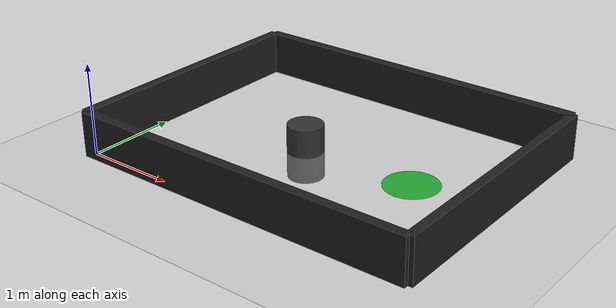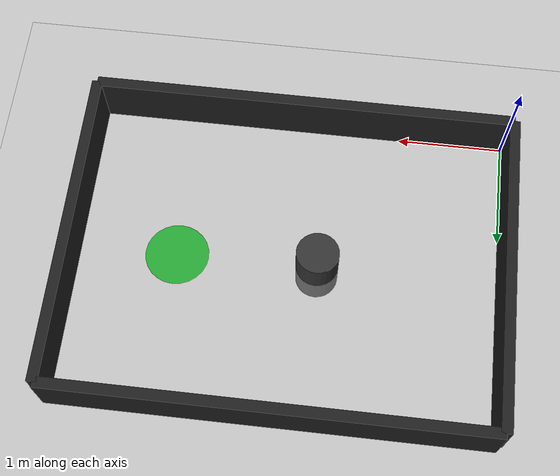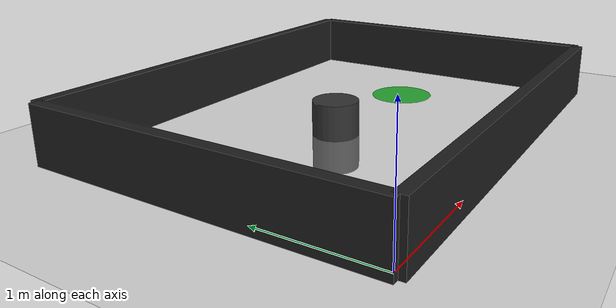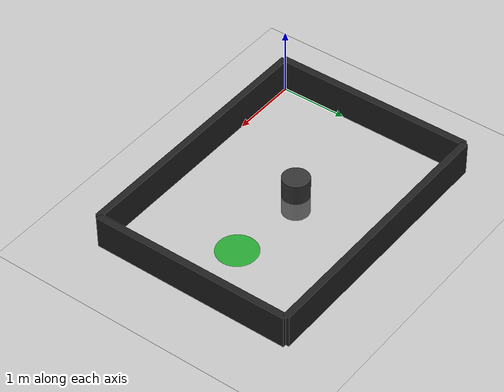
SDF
<?xml version="1.0" ?>
<sdf version="1.6">
  <world name="default">
    <include>
      <uri>model://ground_plane</uri>
    </include>
    <include>
      <uri>model://sun</uri>
    </include>

    <physics type="ode">
      <real_time_update_rate>1000.0</real_time_update_rate>
      <max_step_size>0.001</max_step_size>
      <real_time_factor>1</real_time_factor>
      <ode>
        <solver>
          <type>quick</type>
          <iters>150</iters>
          <precon_iters>0</precon_iters>
          <sor>1.400000</sor>
          <use_dynamic_moi_rescaling>1</use_dynamic_moi_rescaling>
        </solver>
        <constraints>
          <cfm>0.00001</cfm>
          <erp>0.2</erp>
          <contact_max_correcting_vel>2000.000000</contact_max_correcting_vel>
          <contact_surface_layer>0.01000</contact_surface_layer>
        </constraints>
      </ode>
    </physics>

    <!-- Include the marker for the goal position -->
    <include>
      <uri>model://marker</uri>
      <pose>2.99 1.45 0 0 0 0</pose>
    </include>

    <!-- Include pushable cylinder object -->
    <include>
      <uri>model://cylinder-2</uri>
      <pose>1.67 1.42 0 0 0 0</pose>
    </include>

    <!-- Include the wall that creates the world limit -->
    <include>
      <uri>model://wall</uri>
      <pose>0.45 1.45 -0.75 0 0 0</pose>
    </include>

    <scene>
      <ambient>0.4 0.4 0.4 1</ambient>
      <background>0.7 0.7 0.7 1</background>
      <shadows>true</shadows>
    </scene>

    <gui fullscreen='0'>
      <camera name='user_camera'>
        <pose>0.0 0.0 17.0 0 1.5708 0</pose>
        <view_controller>orbit</view_controller>
      </camera>
    </gui>
  </world>
</sdf>

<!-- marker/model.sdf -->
<sdf version="1.4">
  <model name="marker">
    <pose frame=''>0 0 0 0 -0 0</pose>
    <static>1</static>
    <gravity>1</gravity>
    <self_collide>0</self_collide>
    <kinematic>0</kinematic>

    <link name="marker_link">
      <collision name="body_collision">
        <geometry>
            <cylinder>
                <radius>.3</radius>
                <length>.0001</length>
            </cylinder>
        </geometry>
        <pose frame=''>0 0 0 0 -0 0</pose>
      </collision>

      <visual name="body_visual">
        <pose frame=''>0 0 0 0 -0 0</pose>
        <geometry>
            <cylinder>
                <radius>.3</radius>
                <length>.0001</length>
            </cylinder>
        </geometry>

        <material>
          <script>
            <uri>file://media/materials/scripts/gazebo.material</uri>
            <name>Gazebo/Green</name>
          </script>
          <ambient>1 1 1 1</ambient>
        </material>
      </visual>

    </link>
  </model>
</sdf>

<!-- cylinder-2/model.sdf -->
<sdf version="1.4">
  <model name="cylinder-2">
    <pose frame=''>0 0 0 0 -0 0</pose>
    <static>0</static>
    <gravity>1</gravity>
    <self_collide>0</self_collide>
    <kinematic>0</kinematic>

    <link name="cylinder_link">
      <collision name="body_collision">
        <geometry>
            <cylinder>
                <radius>.2</radius>
                <length>.6</length>
            </cylinder>
        </geometry>
        <pose frame=''>0 0 0 0 -0 0</pose>
      </collision>

      <visual name="body_visual">
        <pose frame=''>0 0 0 0 -0 0</pose>
        <geometry>
            <cylinder>
                <radius>.2</radius>
                <length>.6</length>
            </cylinder>
        </geometry>
        <material>
          <ambient>1.0 0.8 0.8 1</ambient>
          <diffuse>0.2 0.2 0.2 1</diffuse>
          <specular>0 0 0 0</specular>
          <emissive>0 0 0 1</emissive>
        </material>
      </visual>

      <inertial>
        <mass>0.04</mass>
        <inertia>
          <ixx>0.0016</ixx>
          <ixy>0</ixy>
          <ixz>0</ixz>
          <iyy>0.0016</iyy>
          <iyz>0</iyz>
          <izz>0.0008</izz>
        </inertia>
      </inertial>
    </link>
  </model>
</sdf>

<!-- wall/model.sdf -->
<sdf version="1.4">
  <model name="wall">
    <pose frame=''>0 0 0 0 -0 0</pose>
    <static>1</static>
    <gravity>1</gravity>
    <self_collide>1</self_collide>
    <kinematic>0</kinematic>

    <link name="wall_link_left">
      <collision name="body_collision">
        <geometry>
            <box>
                <size>4 0.1 0.5</size>
            </box>
        </geometry>
        <pose frame=''>0 0 1 0 -0 0</pose>
      </collision>

      <visual name="wall_visual_left">
        <pose frame=''>0 0 1 0 -0 0</pose>
        <geometry>
            <box>
                <size>4 0.1 0.5</size>
            </box>
        </geometry>

        <material>
            <script>
                <uri>file://media/materials/scripts/gazebo.material</uri>
                <name>Gazebo/Black</name>
            </script>
            <ambient>1 1 1 1</ambient>
        </material>
      </visual>

      <pose frame=''>1.5 -1.5 0 0 -0 0</pose>
    </link>

    <link name="wall_link_right">
      <collision name="body_collision">
        <geometry>
            <box>
                <size>4 0.1 0.5</size>
            </box>
        </geometry>
        <pose frame=''>0 0 1 0 -0 0</pose>
      </collision>

      <visual name="wall_visual_right">
        <pose frame=''>0 0 1 0 -0 0</pose>
        <geometry>
            <box>
                <size>4 0.1 0.5</size>
            </box>
        </geometry>

        <material>
            <script>
                <uri>file://media/materials/scripts/gazebo.material</uri>
                <name>Gazebo/Black</name>
            </script>
            <ambient>1 1 1 1</ambient>
        </material>
      </visual>

      <pose frame=''>1.5 1.5 0 0 -0 0</pose>
    </link>

    <link name="wall_link_back">
      <collision name="body_collision">
        <geometry>
            <box>
                <size>0.1 3.0 0.5</size>
            </box>
        </geometry>
        <pose frame=''>0 0 1 0 -0 0</pose>
      </collision>

      <visual name="wall_visual_back">
        <pose frame=''>0 0 1 0 -0 0</pose>
        <geometry>
            <box>
                <size>0.1 3.0 0.5</size>
            </box>
        </geometry>

        <material>
            <script>
                <uri>file://media/materials/scripts/gazebo.material</uri>
                <name>Gazebo/Black</name>
            </script>
            <ambient>1 1 1 1</ambient>
        </material>
      </visual>

      <pose frame=''>3.5 0 0 0 -0 0</pose>
    </link>

    <link name="wall_link_front">
      <collision name="body_collision">
        <geometry>
            <box>
                <size>0.1 3.0 0.5</size>
            </box>
        </geometry>
        <pose frame=''>0 0 1 0 -0 0</pose>
      </collision>

      <visual name="wall_visual_front">
        <pose frame=''>0 0 1 0 -0 0</pose>
        <geometry>
            <box>
                <size>0.1 3.0 0.5</size>
            </box>
        </geometry>

        <material>
            <script>
                <uri>file://media/materials/scripts/gazebo.material</uri>
                <name>Gazebo/Black</name>
            </script>
            <ambient>1 1 1 1</ambient>
        </material>
      </visual>

      <pose frame=''>-0.5 0 0 0 -0 0</pose>
    </link>

  </model>
</sdf>
